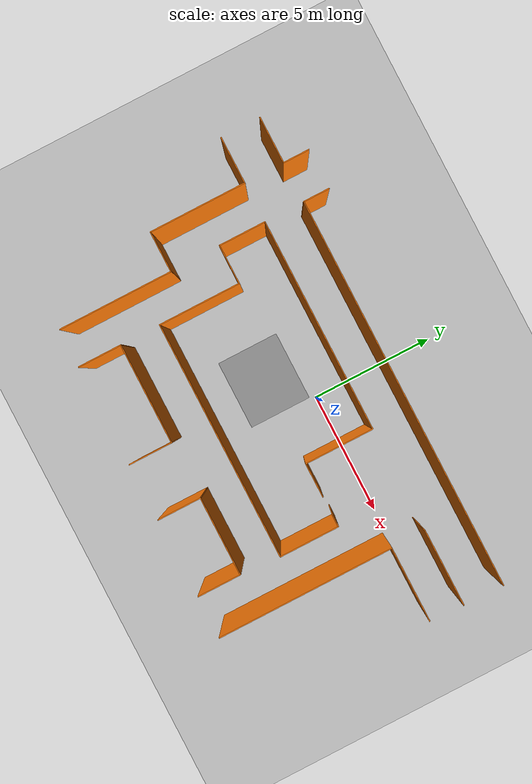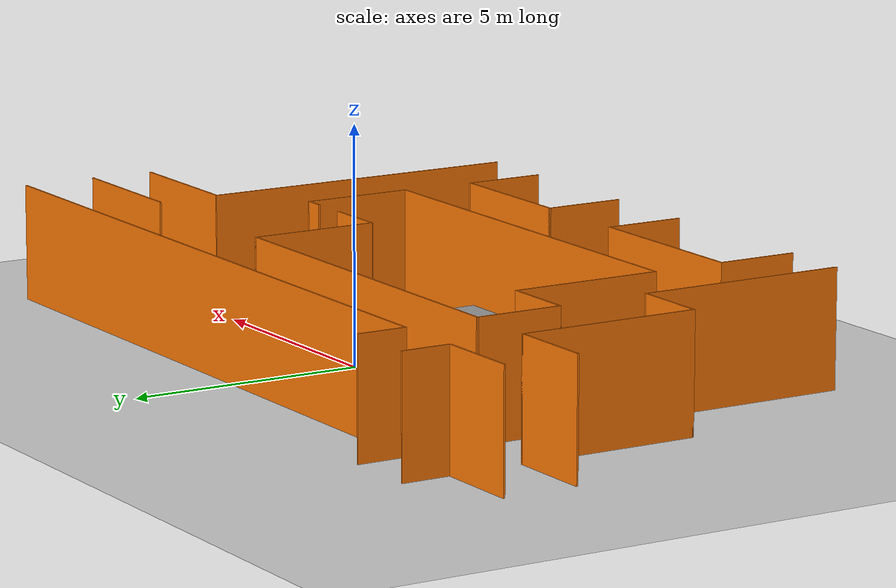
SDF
<sdf version="1.7">
 <world name="default">
  <light name="sun" type="directional">
   <pose>0 0 10 0 -0 0</pose>
   <diffuse>0.8 0.8 0.8 1</diffuse>
   <specular>0.2 0.2 0.2 1</specular>
   <attenuation>
    <range>1000</range>
    <constant>0.9</constant>
    <linear>0.01</linear>
    <quadratic>0.001</quadratic>
   </attenuation>
   <direction>-0.5 0.1 -0.9</direction>
   <spot><inner_angle>0</inner_angle><outer_angle>0</outer_angle><falloff>0</falloff></spot>
  </light>
  <model name="ground_plane">
   <static>1</static>
   <link name="link">
    <collision name="collision">
     <geometry><plane><normal>0 0 1</normal><size>100 100</size></plane></geometry>
     <surface><friction><ode><mu>100</mu><mu2>50</mu2></ode></friction></surface>
    </collision>
    <visual name="visual">
     <cast_shadows>0</cast_shadows>
     <geometry><plane><normal>0 0 1</normal><size>100 100</size></plane></geometry>
     <material>
      <script><uri>file://media/materials/scripts/gazebo.material</uri><name>Gazebo/Grey</name></script>
     </material>
    </visual>
   </link>
  </model>
  <gravity>0 0 -9.8</gravity>
  <magnetic_field>6e-06 2.3e-05 -4.2e-05</magnetic_field>
  <atmosphere type="adiabatic"/>
  <physics type="ode">
   <max_step_size>0.001</max_step_size>
   <real_time_factor>1</real_time_factor>
   <real_time_update_rate>1000</real_time_update_rate>
  </physics>
  <scene><ambient>0.4 0.4 0.4 1</ambient><background>0.7 0.7 0.7 1</background><shadows>1</shadows></scene>
  <audio><device>default</device></audio>
  <spherical_coordinates>
   <surface_model>EARTH_WGS84</surface_model>
   <latitude_deg>0</latitude_deg>
   <longitude_deg>0</longitude_deg>
   <elevation>0</elevation>
   <heading_deg>0</heading_deg>
  </spherical_coordinates>
  <model name="shiyanlou_quarter">
   <pose>-0.266375 -1.67085 0 0 -0 0</pose>
   <link name="Wall_110">
    <collision name="Wall_110_Collision">
     <geometry><box><size>3.0625 0.0375 2.5</size></box></geometry>
     <pose>0 0 1.25 0 -0 0</pose>
    </collision>
    <visual name="Wall_110_Visual">
     <pose>0 0 1.25 0 -0 0</pose>
     <geometry><box><size>3.0625 0.0375 2.5</size></box></geometry>
     <material>
      <script><uri>file://media/materials/scripts/gazebo.material</uri><name>Gazebo/Grey</name></script>
      <ambient>0.996078 0.47451 0.0196078 1</ambient>
     </material>
     <meta><layer>0</layer></meta>
    </visual>
    <pose>7.76725 2.8731 0 0 -0 0</pose>
   </link>
   <link name="Wall_116">
    <collision name="Wall_116_Collision">
     <geometry><box><size>7.05162 0.0375 2.5</size></box></geometry>
     <pose>0 0 1.25 0 -0 0</pose>
    </collision>
    <visual name="Wall_116_Visual">
     <pose>0 0 1.25 0 -0 0</pose>
     <geometry><box><size>7.05162 0.0375 2.5</size></box></geometry>
     <material>
      <script><uri>file://media/materials/scripts/gazebo.material</uri><name>Gazebo/Grey</name></script>
      <ambient>0.996078 0.47451 0.0196078 1</ambient>
     </material>
     <meta><layer>0</layer></meta>
    </visual>
    <pose>6.25475 -1.99096 0 0 -0 1.5708</pose>
   </link>
   <link name="Wall_118">
    <collision name="Wall_118_Collision">
     <geometry><box><size>3 0.0375 2.5</size></box></geometry>
     <pose>0 0 1.25 0 -0 0</pose>
    </collision>
    <visual name="Wall_118_Visual">
     <pose>0 0 1.25 0 -0 0</pose>
     <geometry><box><size>3 0.0375 2.5</size></box></geometry>
     <material>
      <script><uri>file://media/materials/scripts/gazebo.material</uri><name>Gazebo/Grey</name></script>
      <ambient>0.996078 0.47451 0.0196078 1</ambient>
     </material>
     <meta><layer>0</layer></meta>
    </visual>
    <pose>7.736 1.5161 0 0 -0 0</pose>
   </link>
   <link name="Wall_122">
    <collision name="Wall_122_Collision">
     <geometry><box><size>1.75 0.0375 2.5</size></box></geometry>
     <pose>0 0 1.25 0 -0 0</pose>
    </collision>
    <visual name="Wall_122_Visual">
     <pose>0 0 1.25 0 -0 0</pose>
     <geometry><box><size>1.75 0.0375 2.5</size></box></geometry>
     <material>
      <script><uri>file://media/materials/scripts/gazebo.material</uri><name>Gazebo/Grey</name></script>
      <ambient>0.996078 0.47451 0.0196078 1</ambient>
     </material>
     <meta><layer>0</layer></meta>
    </visual>
    <pose>1.45788 -4.63452 0 0 -0 -1.5708</pose>
   </link>
   <link name="Wall_126">
    <collision name="Wall_126_Collision">
     <geometry><box><size>3.15875 0.0375 2.5</size></box></geometry>
     <pose>0 0 1.25 0 -0 0</pose>
    </collision>
    <visual name="Wall_126_Visual">
     <pose>0 0 1.25 0 -0 0</pose>
     <geometry><box><size>3.15875 0.0375 2.5</size></box></geometry>
     <material>
      <script><uri>file://media/materials/scripts/gazebo.material</uri><name>Gazebo/Grey</name></script>
      <ambient>0.996078 0.47451 0.0196078 1</ambient>
     </material>
     <meta><layer>0</layer></meta>
    </visual>
    <pose>3.0185 -3.77827 0 0 -0 0</pose>
   </link>
   <link name="Wall_130">
    <collision name="Wall_130_Collision">
     <geometry><box><size>1.75 0.0375 2.5</size></box></geometry>
     <pose>0 0 1.25 0 -0 0</pose>
    </collision>
    <visual name="Wall_130_Visual">
     <pose>0 0 1.25 0 -0 0</pose>
     <geometry><box><size>1.75 0.0375 2.5</size></box></geometry>
     <material>
      <script><uri>file://media/materials/scripts/gazebo.material</uri><name>Gazebo/Grey</name></script>
      <ambient>0.996078 0.47451 0.0196078 1</ambient>
     </material>
     <meta><layer>0</layer></meta>
    </visual>
    <pose>4.57913 -4.63452 0 0 -0 -1.5708</pose>
   </link>
   <link name="Wall_19">
    <collision name="Wall_19_Collision">
     <geometry><box><size>3.875 0.0375 2.5</size></box></geometry>
     <pose>0 0 1.25 0 -0 0</pose>
    </collision>
    <visual name="Wall_19_Visual">
     <pose>0 0 1.25 0 -0 0</pose>
     <geometry><box><size>3.875 0.0375 2.5</size></box></geometry>
     <material>
      <script><uri>file://media/materials/scripts/gazebo.material</uri><name>Gazebo/Grey</name></script>
      <ambient>0.996078 0.47451 0.0196078 1</ambient>
     </material>
     <meta><layer>0</layer></meta>
    </visual>
    <pose>-7.89075 0.972348 0 0 -0 -1.5708</pose>
   </link>
   <link name="Wall_26">
    <collision name="Wall_26_Collision">
     <geometry><box><size>1.0625 0.0375 2.5</size></box></geometry>
     <pose>0 0 1.25 0 -0 0</pose>
    </collision>
    <visual name="Wall_26_Visual">
     <pose>0 0 1.25 0 -0 0</pose>
     <geometry><box><size>1.0625 0.0375 2.5</size></box></geometry>
     <material>
      <script><uri>file://media/materials/scripts/gazebo.material</uri><name>Gazebo/Grey</name></script>
      <ambient>0.996078 0.47451 0.0196078 1</ambient>
     </material>
     <meta><layer>0</layer></meta>
    </visual>
    <pose>-7.89075 4.98548 0 0 -0 1.5708</pose>
   </link>
   <link name="Wall_31">
    <collision name="Wall_31_Collision">
     <geometry><box><size>1.06269 0.0375 2.5</size></box></geometry>
     <pose>0 0 1.25 0 -0 0</pose>
    </collision>
    <visual name="Wall_31_Visual">
     <pose>0 0 1.25 0 -0 0</pose>
     <geometry><box><size>1.06269 0.0375 2.5</size></box></geometry>
     <material>
      <script><uri>file://media/materials/scripts/gazebo.material</uri><name>Gazebo/Grey</name></script>
      <ambient>0.996078 0.47451 0.0196078 1</ambient>
     </material>
     <meta><layer>0</layer></meta>
    </visual>
    <pose>-6.30887 4.98544 0 0 -0 -1.5708</pose>
   </link>
   <link name="Wall_33">
    <collision name="Wall_33_Collision">
     <geometry><box><size>1.875 0.0375 2.5</size></box></geometry>
     <pose>0 0 1.25 0 -0 0</pose>
    </collision>
    <visual name="Wall_33_Visual">
     <pose>0 0 1.25 0 -0 0</pose>
     <geometry><box><size>1.875 0.0375 2.5</size></box></geometry>
     <material>
      <script><uri>file://media/materials/scripts/gazebo.material</uri><name>Gazebo/Grey</name></script>
      <ambient>0.996078 0.47451 0.0196078 1</ambient>
     </material>
     <meta><layer>0</layer></meta>
    </visual>
    <pose>-8.8095 4.47297 0 0 -0 3.14159</pose>
   </link>
   <link name="Wall_35">
    <collision name="Wall_35_Collision">
     <geometry><box><size>1.875 0.0375 2.5</size></box></geometry>
     <pose>0 0 1.25 0 -0 0</pose>
    </collision>
    <visual name="Wall_35_Visual">
     <pose>0 0 1.25 0 -0 0</pose>
     <geometry><box><size>1.875 0.0375 2.5</size></box></geometry>
     <material>
      <script><uri>file://media/materials/scripts/gazebo.material</uri><name>Gazebo/Grey</name></script>
      <ambient>0.996078 0.47451 0.0196078 1</ambient>
     </material>
     <meta><layer>0</layer></meta>
    </visual>
    <pose>-8.8095 2.8911 0 0 -0 3.14159</pose>
   </link>
   <link name="Wall_38">
    <collision name="Wall_38_Collision">
     <geometry><box><size>1.574 0.0375 2.5</size></box></geometry>
     <pose>0 0 1.25 0 -0 0</pose>
    </collision>
    <visual name="Wall_38_Visual">
     <pose>0 0 1.25 0 -0 0</pose>
     <geometry><box><size>1.574 0.0375 2.5</size></box></geometry>
     <material>
      <script><uri>file://media/materials/scripts/gazebo.material</uri><name>Gazebo/Grey</name></script>
      <ambient>0.996078 0.47451 0.0196078 1</ambient>
     </material>
     <meta><layer>0</layer></meta>
    </visual>
    <pose>-5.53538 1.0411 0 0 -0 0</pose>
   </link>
   <link name="Wall_42">
    <collision name="Wall_42_Collision">
     <geometry><box><size>1.64613 0.0375 2.5</size></box></geometry>
     <pose>0 0 1.25 0 -0 0</pose>
    </collision>
    <visual name="Wall_42_Visual">
     <pose>0 0 1.25 0 -0 0</pose>
     <geometry><box><size>1.64613 0.0375 2.5</size></box></geometry>
     <material>
      <script><uri>file://media/materials/scripts/gazebo.material</uri><name>Gazebo/Grey</name></script>
      <ambient>0.996078 0.47451 0.0196078 1</ambient>
     </material>
     <meta><layer>0</layer></meta>
    </visual>
    <pose>-7.08644 -0.946403 0 0 -0 0</pose>
   </link>
   <link name="Wall_44">
    <collision name="Wall_44_Collision">
     <geometry><box><size>3.275 0.0375 2.5</size></box></geometry>
     <pose>0 0 1.25 0 -0 0</pose>
    </collision>
    <visual name="Wall_44_Visual">
     <pose>0 0 1.25 0 -0 0</pose>
     <geometry><box><size>3.275 0.0375 2.5</size></box></geometry>
     <material>
      <script><uri>file://media/materials/scripts/gazebo.material</uri><name>Gazebo/Grey</name></script>
      <ambient>0.996078 0.47451 0.0196078 1</ambient>
     </material>
     <meta><layer>0</layer></meta>
    </visual>
    <pose>-4.76713 -0.577653 0 0 -0 -1.5708</pose>
   </link>
   <link name="Wall_48">
    <collision name="Wall_48_Collision">
     <geometry><box><size>9.4775 0.0375 2.5</size></box></geometry>
     <pose>0 0 1.25 0 -0 0</pose>
    </collision>
    <visual name="Wall_48_Visual">
     <pose>0 0 1.25 0 -0 0</pose>
     <geometry><box><size>9.4775 0.0375 2.5</size></box></geometry>
     <material>
      <script><uri>file://media/materials/scripts/gazebo.material</uri><name>Gazebo/Grey</name></script>
      <ambient>0.996078 0.47451 0.0196078 1</ambient>
     </material>
     <meta><layer>0</layer></meta>
    </visual>
    <pose>-0.047125 -2.1964 0 0 -0 0</pose>
   </link>
   <link name="Wall_5">
    <collision name="Wall_5_Collision">
     <geometry><box><size>15.6531 0.0375 2.5</size></box></geometry>
     <pose>0 0 1.25 0 -0 0</pose>
    </collision>
    <visual name="Wall_5_Visual">
     <pose>0 0 1.25 0 -0 0</pose>
     <geometry><box><size>15.6531 0.0375 2.5</size></box></geometry>
     <material>
      <script><uri>file://media/materials/scripts/gazebo.material</uri><name>Gazebo/Grey</name></script>
      <ambient>0.996078 0.47451 0.0196078 1</ambient>
     </material>
     <meta><layer>0</layer></meta>
    </visual>
    <pose>1.49894 4.47297 0 0 -0 0</pose>
   </link>
   <link name="Wall_52">
    <collision name="Wall_52_Collision">
     <geometry><box><size>4.0125 0.0375 2.5</size></box></geometry>
     <pose>0 0 1.25 0 -0 0</pose>
    </collision>
    <visual name="Wall_52_Visual">
     <pose>0 0 1.25 0 -0 0</pose>
     <geometry><box><size>4.0125 0.0375 2.5</size></box></geometry>
     <material>
      <script><uri>file://media/materials/scripts/gazebo.material</uri><name>Gazebo/Grey</name></script>
      <ambient>0.996078 0.47451 0.0196078 1</ambient>
     </material>
     <meta><layer>0</layer></meta>
    </visual>
    <pose>-2.77962 -3.77827 0 0 -0 0</pose>
   </link>
   <link name="Wall_54">
    <collision name="Wall_54_Collision">
     <geometry><box><size>1.75 0.0375 2.5</size></box></geometry>
     <pose>0 0 1.25 0 -0 0</pose>
    </collision>
    <visual name="Wall_54_Visual">
     <pose>0 0 1.25 0 -0 0</pose>
     <geometry><box><size>1.75 0.0375 2.5</size></box></geometry>
     <material>
      <script><uri>file://media/materials/scripts/gazebo.material</uri><name>Gazebo/Grey</name></script>
      <ambient>0.996078 0.47451 0.0196078 1</ambient>
     </material>
     <meta><layer>0</layer></meta>
    </visual>
    <pose>-4.76713 -4.63452 0 0 -0 -1.5708</pose>
   </link>
   <link name="Wall_60">
    <collision name="Wall_60_Collision">
     <geometry><box><size>4.55162 0.0375 2.5</size></box></geometry>
     <pose>0 0 1.25 0 -0 0</pose>
    </collision>
    <visual name="Wall_60_Visual">
     <pose>0 0 1.25 0 -0 0</pose>
     <geometry><box><size>4.55162 0.0375 2.5</size></box></geometry>
     <material>
      <script><uri>file://media/materials/scripts/gazebo.material</uri><name>Gazebo/Grey</name></script>
      <ambient>0.996078 0.47451 0.0196078 1</ambient>
     </material>
     <meta><layer>0</layer></meta>
    </visual>
    <pose>-6.28212 -3.20346 0 0 -0 -1.5708</pose>
   </link>
   <link name="Wall_62">
    <collision name="Wall_62_Collision">
     <geometry><box><size>1.75 0.0375 2.5</size></box></geometry>
     <pose>0 0 1.25 0 -0 0</pose>
    </collision>
    <visual name="Wall_62_Visual">
     <pose>0 0 1.25 0 -0 0</pose>
     <geometry><box><size>1.75 0.0375 2.5</size></box></geometry>
     <material>
      <script><uri>file://media/materials/scripts/gazebo.material</uri><name>Gazebo/Grey</name></script>
      <ambient>0.996078 0.47451 0.0196078 1</ambient>
     </material>
     <meta><layer>0</layer></meta>
    </visual>
    <pose>-0.792125 -4.63452 0 0 -0 -1.5708</pose>
   </link>
   <link name="Wall_70">
    <collision name="Wall_70_Collision">
     <geometry><box><size>2.4 0.0375 2.5</size></box></geometry>
     <pose>0 0 1.25 0 -0 0</pose>
    </collision>
    <visual name="Wall_70_Visual">
     <pose>0 0 1.25 0 -0 0</pose>
     <geometry><box><size>2.4 0.0375 2.5</size></box></geometry>
     <material>
      <script><uri>file://media/materials/scripts/gazebo.material</uri><name>Gazebo/Grey</name></script>
      <ambient>0.996078 0.47451 0.0196078 1</ambient>
     </material>
     <meta><layer>0</layer></meta>
    </visual>
    <pose>4.67288 -1.01515 0 0 -0 1.5708</pose>
   </link>
   <link name="Wall_72">
    <collision name="Wall_72_Collision">
     <geometry><box><size>0.4375 0.0375 2.5</size></box></geometry>
     <pose>0 0 1.25 0 -0 0</pose>
    </collision>
    <visual name="Wall_72_Visual">
     <pose>0 0 1.25 0 -0 0</pose>
     <geometry><box><size>0.4375 0.0375 2.5</size></box></geometry>
     <material>
      <script><uri>file://media/materials/scripts/gazebo.material</uri><name>Gazebo/Grey</name></script>
      <ambient>0.996078 0.47451 0.0196078 1</ambient>
     </material>
     <meta><layer>0</layer></meta>
    </visual>
    <pose>4.47288 0.166098 0 0 -0 3.14159</pose>
   </link>
   <link name="Wall_81">
    <collision name="Wall_81_Collision">
     <geometry><box><size>1.375 0.0375 2.5</size></box></geometry>
     <pose>0 0 1.25 0 -0 0</pose>
    </collision>
    <visual name="Wall_81_Visual">
     <pose>0 0 1.25 0 -0 0</pose>
     <geometry><box><size>1.375 0.0375 2.5</size></box></geometry>
     <material>
      <script><uri>file://media/materials/scripts/gazebo.material</uri><name>Gazebo/Grey</name></script>
      <ambient>0.996078 0.47451 0.0196078 1</ambient>
     </material>
     <meta><layer>0</layer></meta>
    </visual>
    <pose>2.79162 0.166098 0 0 -0 3.14159</pose>
   </link>
   <link name="Wall_83">
    <collision name="Wall_83_Collision">
     <geometry><box><size>2.75 0.0375 2.5</size></box></geometry>
     <pose>0 0 1.25 0 -0 0</pose>
    </collision>
    <visual name="Wall_83_Visual">
     <pose>0 0 1.25 0 -0 0</pose>
     <geometry><box><size>2.75 0.0375 2.5</size></box></geometry>
     <material>
      <script><uri>file://media/materials/scripts/gazebo.material</uri><name>Gazebo/Grey</name></script>
      <ambient>0.996078 0.47451 0.0196078 1</ambient>
     </material>
     <meta><layer>0</layer></meta>
    </visual>
    <pose>2.12062 1.53485 0 0 -0 -1.5708</pose>
   </link>
   <link name="Wall_87">
    <collision name="Wall_87_Collision">
     <geometry><box><size>1.87504 0.0375 2.5</size></box></geometry>
     <pose>0 0 1.25 0 -0 0</pose>
    </collision>
    <visual name="Wall_87_Visual">
     <pose>0 0 1.25 0 -0 0</pose>
     <geometry><box><size>1.87504 0.0375 2.5</size></box></geometry>
     <material>
      <script><uri>file://media/materials/scripts/gazebo.material</uri><name>Gazebo/Grey</name></script>
      <ambient>0.996078 0.47451 0.0196078 1</ambient>
     </material>
     <meta><layer>0</layer></meta>
    </visual>
    <pose>-6.30887 1.97236 0 0 -0 -1.5708</pose>
   </link>
   <link name="Wall_91">
    <collision name="Wall_91_Collision">
     <geometry><box><size>8.46063 0.0375 2.5</size></box></geometry>
     <pose>0 0 1.25 0 -0 0</pose>
    </collision>
    <visual name="Wall_91_Visual">
     <pose>0 0 1.25 0 -0 0</pose>
     <geometry><box><size>8.46063 0.0375 2.5</size></box></geometry>
     <material>
      <script><uri>file://media/materials/scripts/gazebo.material</uri><name>Gazebo/Grey</name></script>
      <ambient>0.996078 0.47451 0.0196078 1</ambient>
     </material>
     <meta><layer>0</layer></meta>
    </visual>
    <pose>-2.09731 2.8911 0 0 -0 0</pose>
   </link>
   <static>1</static>
  </model>
  <model name="unit_box">
   <pose>-1.52571 -1.4937 0.499941 4.8e-05 0 -7e-06</pose>
   <link name="link">
    <inertial>
     <mass>1</mass>
     <inertia>
      <ixx>0.166667</ixx>
      <ixy>0</ixy>
      <ixz>0</ixz>
      <iyy>0.166667</iyy>
      <iyz>0</iyz>
      <izz>0.166667</izz>
     </inertia>
    </inertial>
    <collision name="collision"><geometry><box><size>2.75184 2.47497 1</size></box></geometry></collision>
    <visual name="visual">
     <geometry><box><size>2.75184 2.47497 1</size></box></geometry>
     <material>
      <script><name>Gazebo/Grey</name><uri>file://media/materials/scripts/gazebo.material</uri></script>
     </material>
    </visual>
   </link>
  </model>
 </world>
</sdf>
